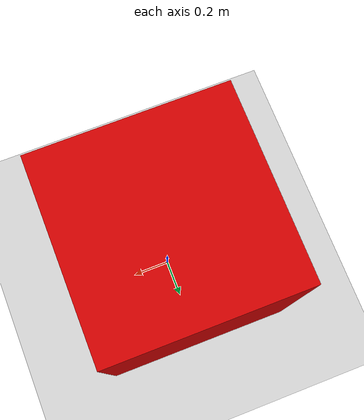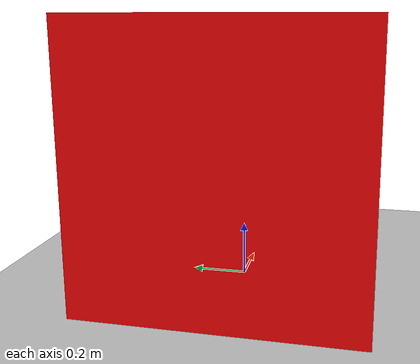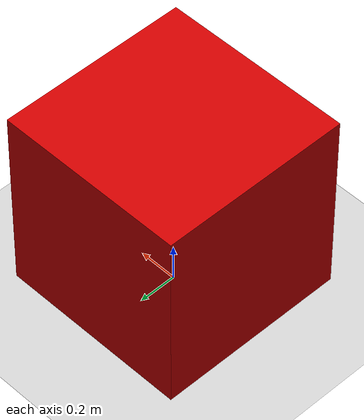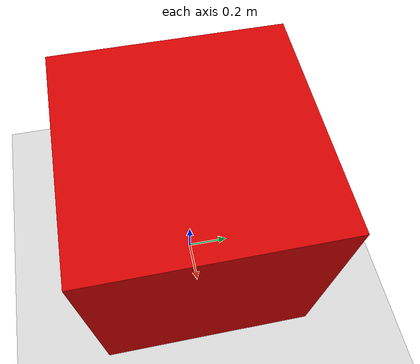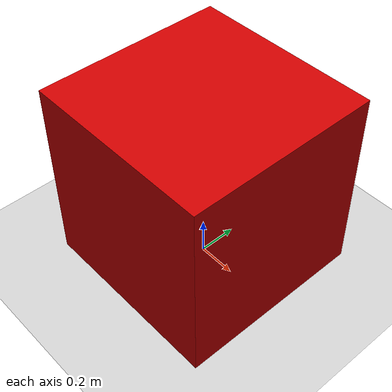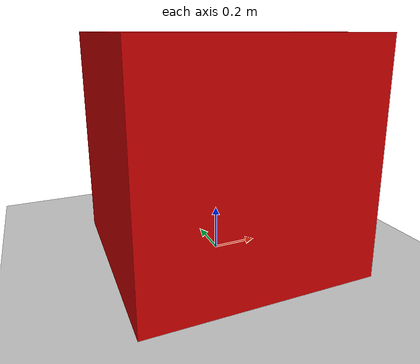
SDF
<?xml version='1.0' encoding="UTF-8"?>
<sdf version="1.7">

    <world name="cube_world">

		<!-- Light source -->
	    <light type="directional" name="sun">
            <cast_shadows>true</cast_shadows>
            <pose>0 0 10 0 0 0</pose>
            <diffuse>0.8 0.8 0.8 1</diffuse>
            <specular>0.2 0.2 0.2 1</specular>
        </light>

    <!-- Ground Plane Model -->
	<model name="ground_plane">
            <static>true</static>
            <link name="link">
                <collision name="collision">
                    <geometry>
                    <plane>
                        <normal>0 0 1</normal>
                        <size>100 100</size>
                    </plane>
                    </geometry>
                </collision>
                <visual name="visual">
                    <geometry>
                    <plane>
                        <normal>0 0 1</normal>
                        <size>100 100</size>
                    </plane>
                    </geometry>
                <material>
                    <script>
                        <uri>file://media/materials/scripts/gazebo.material</uri>
                        <name>Gazebo/Grey</name>
                    </script>
                </material>
                </visual>
            </link>
    </model>

    <!-- Model that includes box and the reaction wheel at the center -->
	<model name="robot">
		<link name="box">
            <inertial>
                <pose>0 0 0.5 0 0 0</pose>
                <mass>1</mass>
                <inertia>
                   <ixx>0.1</ixx>
                   <ixy>0</ixy>
                   <ixz>0</ixz>
                   <iyy>0.1</iyy>
                   <iyz>0</iyz>
                   <izz>0.1</izz>
                </inertia>
            </inertial>
        <collision name="box_collision">
            <pose>0 0 0.5 0 0 0</pose>
            <geometry>
                <box>
                   <size>1 1 1</size>
                </box>
            </geometry>
        </collision>
        <visual name="box_visual">
            <pose>0 0 0.5 0 0 0</pose>
            <geometry>
               <box>
                   <size>1 1 1</size>
               </box>
            </geometry>
            <material>
                <ambient>0.8 0 0 1</ambient>
                <diffuse>0.8 0 0 1</diffuse>
                <specular>0.8 0 0 1</specular>
            </material>
        </visual>
    </link>
<joint name="disc_joint" type="revolute">
	<pose relative_to="box">0 0 0.5 0 0 0</pose>
		<parent>box</parent>
		<child>disc_link</child>
		<axis>
			<xyz>0 1 0</xyz>
			<limit>
			    <effort>1000</effort>
				<velocity>100</velocity>
			</limit>
			<dynamics>
			    <spring_reference>0</spring_reference>
				<spring_stiffness>0</spring_stiffness>
			</dynamics>
		</axis>
</joint>
<link name="disc_link">
	<pose relative_to="disc_joint">0 0 0 0 0 0</pose>
		<inertial>
			<pose>0 0 0 0 0 0</pose>
			<mass>1</mass>
			<inertia>
				<ixx>0.1</ixx>
				<ixy>0</ixy>
				<ixz>0</ixz>
				<iyy>0.1</iyy>
				<iyz>0</iyz>
				<izz>0.1</izz>
			</inertia>
		</inertial>
		<collision name="disc_collision">
			<pose>0 0 0 0 0 0</pose>
			<geometry>
				<cylinder>
					<length>0.1</length>
					<radius>0.4</radius>
				</cylinder>
			</geometry>
		</collision>
		<visual name="disc_visual">
			<pose>0 0 0 1.570796326794896 0 0</pose>
				<geometry>
					<cylinder>
						<length>0.1</length>
						<radius>0.4</radius>
					</cylinder>
				</geometry>
		    <material>
				<diffuse>1 0.625 0 1</diffuse>
				<ambient>1 0.625 0 1</ambient>
			</material>
		</visual>
</link>

<plugin filename="libignition-gazebo-joint-controller-system.so"
	name="ignition::gazebo::systems::JointController">
	<joint_name>disc_joint</joint_name>
	<topic>cmd_vel</topic>
</plugin>
</model>

    <!-- Including all the plugins that are required -->
    <plugin
	    filename="libignition-gazebo-physics-system.so"
	    name="ignition::gazebo::systems::Physics">
	</plugin>

	<plugin
	    filename="libignition-gazebo-user-commands-system.so"
	    name="ignition::gazebo::systems::UserCommands">
	</plugin>

	<plugin
        filename="libignition-gazebo-scene-broadcaster-system.so"
	    name="ignition::gazebo::systems::SceneBroadcaster">
	</plugin>

	<!-- Code to move the box in forward direction -->
	<plugin filename="libignition-gazebo-triggered-publisher-system.so"
		name="ignition::gazebo::systems::TriggeredPublisher">
		<input type="ignition.msgs.Int32" topic="/keyboard/keypress">
			<match field="data">87</match>
		</input>
		<output type="ignition.msgs.Double" topic="/cmd_vel">
			data: 25.0
		</output>
	</plugin>

	<!-- Code to move the box in backward direction -->
	<plugin filename="libignition-gazebo-triggered-publisher-system.so"
		name="ignition::gazebo::systems::TriggeredPublisher">
		<input type="ignition.msgs.Int32" topic="/keyboard/keypress">
				<match field="data">83</match>
		</input>
		<output type="ignition.msgs.Double" topic="/cmd_vel">
			data: -25.0
		</output>
	</plugin>

	<!-- Code to stop the wheel motion -->
	<plugin filename="libignition-gazebo-triggered-publisher-system.so"
	    name="ignition::gazebo::systems::TriggeredPublisher">
		<input type="ignition.msgs.Int32" topic="/keyboard/keypress">
			<match field="data">66</match> <!-- ASCII code for 'b' -->
		</input>
		<output type="ignition.msgs.Double" topic="/cmd_vel">
			data: 0.0
		</output>
    </plugin>

</world>
</sdf>
